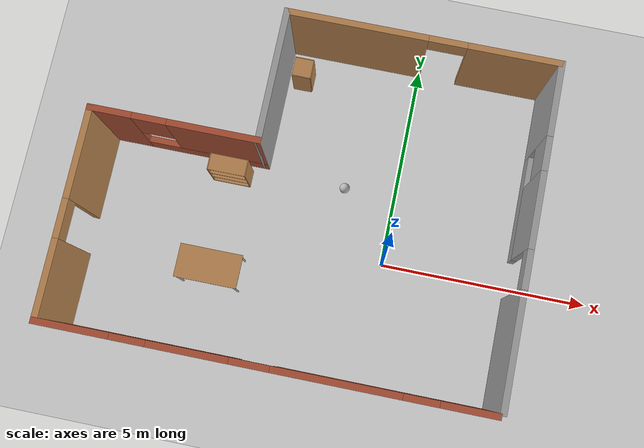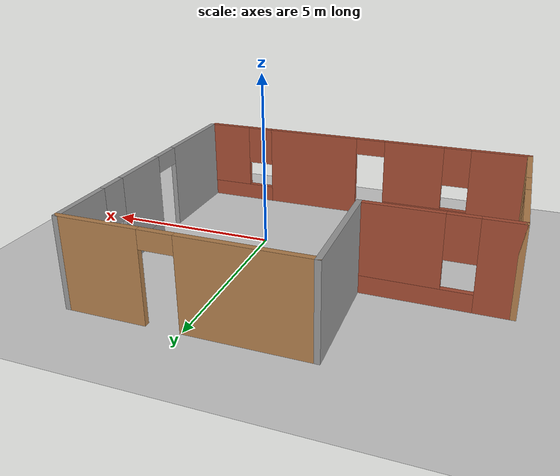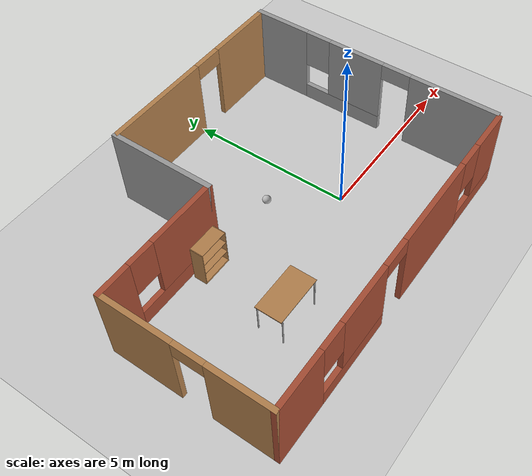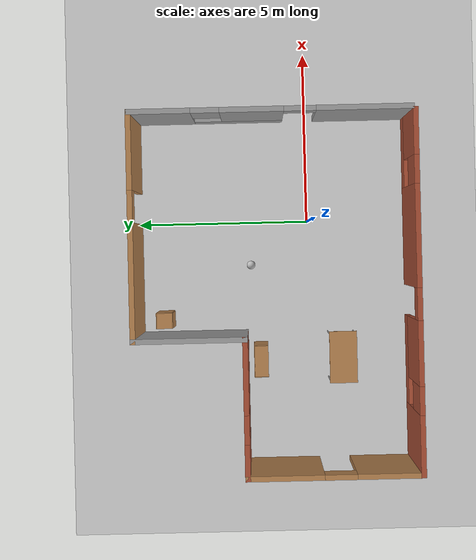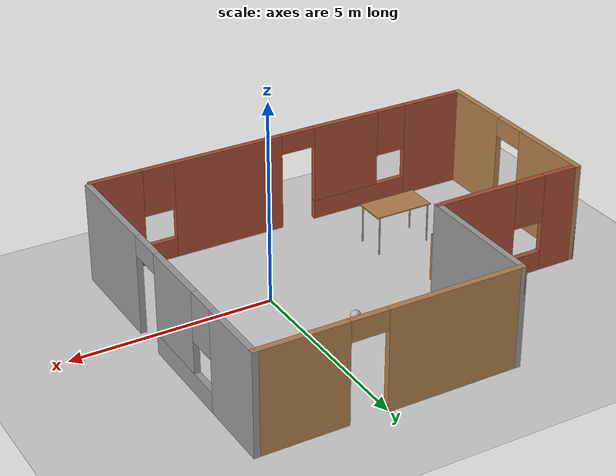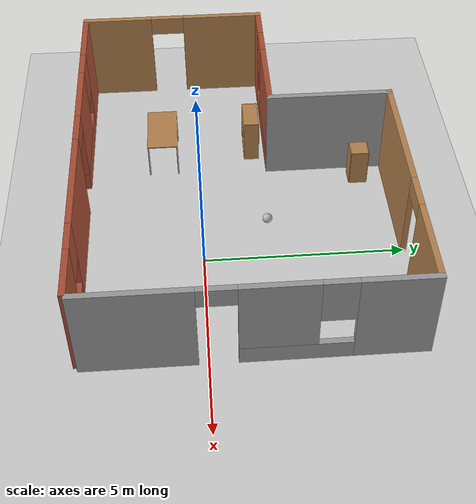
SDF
<sdf version="1.6">
 <world name="default">
  <light name="sun" type="directional">
   <pose>0 0 10 0 -0 0</pose>
   <diffuse>0.8 0.8 0.8 1</diffuse>
   <specular>0.2 0.2 0.2 1</specular>
   <attenuation>
    <range>1000</range>
    <constant>0.9</constant>
    <linear>0.01</linear>
    <quadratic>0.001</quadratic>
   </attenuation>
   <direction>-0.5 0.1 -0.9</direction>
  </light>
  <model name="ground_plane">
   <static>1</static>
   <link name="link">
    <collision name="collision">
     <geometry><plane><normal>0 0 1</normal><size>100 100</size></plane></geometry>
     <surface>
      <contact><collide_bitmask>65535</collide_bitmask></contact>
      <friction><ode><mu>100</mu><mu2>50</mu2></ode></friction>
     </surface>
    </collision>
    <visual name="visual">
     <cast_shadows>0</cast_shadows>
     <geometry><plane><normal>0 0 1</normal><size>100 100</size></plane></geometry>
     <material>
      <script><uri>file://media/materials/scripts/gazebo.material</uri><name>Gazebo/Grey</name></script>
     </material>
    </visual>
   </link>
  </model>
  <gravity>0 0 -9.8</gravity>
  <magnetic_field>6e-06 2.3e-05 -4.2e-05</magnetic_field>
  <atmosphere type="adiabatic"/>
  <physics name="default_physics" default="0" type="ode">
   <max_step_size>0.001</max_step_size>
   <real_time_factor>1</real_time_factor>
   <real_time_update_rate>1000</real_time_update_rate>
  </physics>
  <scene><ambient>0.4 0.4 0.4 1</ambient><background>0.7 0.7 0.7 1</background><shadows>1</shadows></scene>
  <spherical_coordinates>
   <surface_model>EARTH_WGS84</surface_model>
   <latitude_deg>0</latitude_deg>
   <longitude_deg>0</longitude_deg>
   <elevation>0</elevation>
   <heading_deg>0</heading_deg>
  </spherical_coordinates>
  <model name="bb">
   <pose>-2.01165 1.00358 0 0 -0 0</pose>
   <link name="Wall_1">
    <pose>-5.1 -1.55 0 0 -0 1.5708</pose>
    <visual name="Wall_1_Visual_0">
     <pose>-1.5503 0 1.25 0 -0 0</pose>
     <geometry><box><size>1.8994 0.15 2.5</size></box></geometry>
     <material>
      <script><uri>file://media/materials/scripts/gazebo.material</uri><name>Gazebo/Wood</name></script>
      <ambient>1 1 1 1</ambient>
     </material>
     <meta><layer>0</layer></meta>
    </visual>
    <collision name="Wall_1_Collision_0">
     <geometry><box><size>1.8994 0.15 2.5</size></box></geometry>
     <pose>-1.5503 0 1.25 0 -0 0</pose>
    </collision>
    <visual name="Wall_1_Visual_1">
     <pose>1.3997 0 1.25 0 -0 0</pose>
     <geometry><box><size>2.2006 0.15 2.5</size></box></geometry>
     <material>
      <script><uri>file://media/materials/scripts/gazebo.material</uri><name>Gazebo/Wood</name></script>
      <ambient>1 1 1 1</ambient>
     </material>
     <meta><layer>0</layer></meta>
    </visual>
    <collision name="Wall_1_Collision_1">
     <geometry><box><size>2.2006 0.15 2.5</size></box></geometry>
     <pose>1.3997 0 1.25 0 -0 0</pose>
    </collision>
    <visual name="Wall_1_Visual_2">
     <pose>-0.150602 0 2.25 0 -0 0</pose>
     <geometry><box><size>0.9 0.15 0.5</size></box></geometry>
     <material>
      <script><uri>file://media/materials/scripts/gazebo.material</uri><name>Gazebo/Wood</name></script>
      <ambient>1 1 1 1</ambient>
     </material>
     <meta><layer>0</layer></meta>
    </visual>
    <collision name="Wall_1_Collision_2">
     <geometry><box><size>0.9 0.15 0.5</size></box></geometry>
     <pose>-0.150602 0 2.25 0 -0 0</pose>
    </collision>
   </link>
   <link name="Wall_4">
    <pose>-3.175 0.875 0 0 -0 0</pose>
    <visual name="Wall_4_Visual_0">
     <pose>-1.48563 0 1.25 0 -0 0</pose>
     <geometry><box><size>1.02875 0.15 2.5</size></box></geometry>
     <material>
      <script><uri>file://media/materials/scripts/gazebo.material</uri><name>Gazebo/Bricks</name></script>
      <ambient>1 1 1 1</ambient>
     </material>
     <meta><layer>0</layer></meta>
    </visual>
    <collision name="Wall_4_Collision_0">
     <geometry><box><size>1.02875 0.15 2.5</size></box></geometry>
     <pose>-1.48563 0 1.25 0 -0 0</pose>
    </collision>
    <visual name="Wall_4_Visual_1">
     <pose>0.514373 0 0.25 0 -0 0</pose>
     <geometry><box><size>2.97125 0.15 0.5</size></box></geometry>
     <material>
      <script><uri>file://media/materials/scripts/gazebo.material</uri><name>Gazebo/Bricks</name></script>
      <ambient>1 1 1 1</ambient>
     </material>
     <meta><layer>0</layer></meta>
    </visual>
    <collision name="Wall_4_Collision_1">
     <geometry><box><size>2.97125 0.15 0.5</size></box></geometry>
     <pose>0.514373 0 0.25 0 -0 0</pose>
    </collision>
    <visual name="Wall_4_Visual_2">
     <pose>0.914373 0 1.5 0 -0 0</pose>
     <geometry><box><size>2.17125 0.15 2</size></box></geometry>
     <material>
      <script><uri>file://media/materials/scripts/gazebo.material</uri><name>Gazebo/Bricks</name></script>
      <ambient>1 1 1 1</ambient>
     </material>
     <meta><layer>0</layer></meta>
    </visual>
    <collision name="Wall_4_Collision_2">
     <geometry><box><size>2.17125 0.15 2</size></box></geometry>
     <pose>0.914373 0 1.5 0 -0 0</pose>
    </collision>
    <visual name="Wall_4_Visual_3">
     <pose>-0.571254 0 1.9 0 -0 0</pose>
     <geometry><box><size>0.8 0.15 1.2</size></box></geometry>
     <material>
      <script><uri>file://media/materials/scripts/gazebo.material</uri><name>Gazebo/Bricks</name></script>
      <ambient>1 1 1 1</ambient>
     </material>
     <meta><layer>0</layer></meta>
    </visual>
    <collision name="Wall_4_Collision_3">
     <geometry><box><size>0.8 0.15 1.2</size></box></geometry>
     <pose>-0.571254 0 1.9 0 -0 0</pose>
    </collision>
   </link>
   <link name="Wall_5">
    <collision name="Wall_5_Collision">
     <geometry><box><size>3.25 0.15 2.5</size></box></geometry>
     <pose>0 0 1.25 0 -0 0</pose>
    </collision>
    <visual name="Wall_5_Visual">
     <pose>0 0 1.25 0 -0 0</pose>
     <geometry><box><size>3.25 0.15 2.5</size></box></geometry>
     <material>
      <script><uri>file://media/materials/scripts/gazebo.material</uri><name>Gazebo/Grey</name></script>
      <ambient>1 1 1 1</ambient>
     </material>
     <meta><layer>0</layer></meta>
    </visual>
    <pose>-1.25 2.425 0 0 -0 1.5708</pose>
   </link>
   <link name="Wall_6">
    <pose>1.925 3.975 0 0 -0 0</pose>
    <visual name="Wall_6_Visual_0">
     <pose>-1.56486 0 1.25 0 -0 0</pose>
     <geometry><box><size>3.37028 0.15 2.5</size></box></geometry>
     <material>
      <script><uri>file://media/materials/scripts/gazebo.material</uri><name>Gazebo/Wood</name></script>
      <ambient>1 1 1 1</ambient>
     </material>
     <meta><layer>0</layer></meta>
    </visual>
    <collision name="Wall_6_Collision_0">
     <geometry><box><size>3.37028 0.15 2.5</size></box></geometry>
     <pose>-1.56486 0 1.25 0 -0 0</pose>
    </collision>
    <visual name="Wall_6_Visual_1">
     <pose>2.13514 0 1.25 0 -0 0</pose>
     <geometry><box><size>2.22972 0.15 2.5</size></box></geometry>
     <material>
      <script><uri>file://media/materials/scripts/gazebo.material</uri><name>Gazebo/Wood</name></script>
      <ambient>1 1 1 1</ambient>
     </material>
     <meta><layer>0</layer></meta>
    </visual>
    <collision name="Wall_6_Collision_1">
     <geometry><box><size>2.22972 0.15 2.5</size></box></geometry>
     <pose>2.13514 0 1.25 0 -0 0</pose>
    </collision>
    <visual name="Wall_6_Visual_2">
     <pose>0.570279 0 2.25 0 -0 0</pose>
     <geometry><box><size>0.9 0.15 0.5</size></box></geometry>
     <material>
      <script><uri>file://media/materials/scripts/gazebo.material</uri><name>Gazebo/Wood</name></script>
      <ambient>1 1 1 1</ambient>
     </material>
     <meta><layer>0</layer></meta>
    </visual>
    <collision name="Wall_6_Collision_2">
     <geometry><box><size>0.9 0.15 0.5</size></box></geometry>
     <pose>0.570279 0 2.25 0 -0 0</pose>
    </collision>
   </link>
   <link name="Wall_7">
    <pose>5.1 0.05 0 0 0 -1.5708</pose>
    <visual name="Wall_7_Visual_0">
     <pose>-3.10031 0 1.25 0 -0 0</pose>
     <geometry><box><size>1.79939 0.15 2.5</size></box></geometry>
     <material>
      <script><uri>file://media/materials/scripts/gazebo.material</uri><name>Gazebo/Grey</name></script>
      <ambient>1 1 1 1</ambient>
     </material>
     <meta><layer>0</layer></meta>
    </visual>
    <collision name="Wall_7_Collision_0">
     <geometry><box><size>1.79939 0.15 2.5</size></box></geometry>
     <pose>-3.10031 0 1.25 0 -0 0</pose>
    </collision>
    <visual name="Wall_7_Visual_1">
     <pose>2.64295 0 1.25 0 -0 0</pose>
     <geometry><box><size>2.7141 0.15 2.5</size></box></geometry>
     <material>
      <script><uri>file://media/materials/scripts/gazebo.material</uri><name>Gazebo/Grey</name></script>
      <ambient>1 1 1 1</ambient>
     </material>
     <meta><layer>0</layer></meta>
    </visual>
    <collision name="Wall_7_Collision_1">
     <geometry><box><size>2.7141 0.15 2.5</size></box></geometry>
     <pose>2.64295 0 1.25 0 -0 0</pose>
    </collision>
    <visual name="Wall_7_Visual_2">
     <pose>-0.90736 0 0.25 0 -0 0</pose>
     <geometry><box><size>2.58651 0.15 0.5</size></box></geometry>
     <material>
      <script><uri>file://media/materials/scripts/gazebo.material</uri><name>Gazebo/Grey</name></script>
      <ambient>1 1 1 1</ambient>
     </material>
     <meta><layer>0</layer></meta>
    </visual>
    <collision name="Wall_7_Collision_2">
     <geometry><box><size>2.58651 0.15 0.5</size></box></geometry>
     <pose>-0.90736 0 0.25 0 -0 0</pose>
    </collision>
    <visual name="Wall_7_Visual_3">
     <pose>-0.50736 0 1.5 0 -0 0</pose>
     <geometry><box><size>1.78651 0.15 2</size></box></geometry>
     <material>
      <script><uri>file://media/materials/scripts/gazebo.material</uri><name>Gazebo/Grey</name></script>
      <ambient>1 1 1 1</ambient>
     </material>
     <meta><layer>0</layer></meta>
    </visual>
    <collision name="Wall_7_Collision_3">
     <geometry><box><size>1.78651 0.15 2</size></box></geometry>
     <pose>-0.50736 0 1.5 0 -0 0</pose>
    </collision>
    <visual name="Wall_7_Visual_4">
     <pose>-1.80062 0 1.9 0 -0 0</pose>
     <geometry><box><size>0.8 0.15 1.2</size></box></geometry>
     <material>
      <script><uri>file://media/materials/scripts/gazebo.material</uri><name>Gazebo/Grey</name></script>
      <ambient>1 1 1 1</ambient>
     </material>
     <meta><layer>0</layer></meta>
    </visual>
    <collision name="Wall_7_Collision_4">
     <geometry><box><size>0.8 0.15 1.2</size></box></geometry>
     <pose>-1.80062 0 1.9 0 -0 0</pose>
    </collision>
    <visual name="Wall_7_Visual_5">
     <pose>0.835895 0 2.25 0 -0 0</pose>
     <geometry><box><size>0.9 0.15 0.5</size></box></geometry>
     <material>
      <script><uri>file://media/materials/scripts/gazebo.material</uri><name>Gazebo/Grey</name></script>
      <ambient>1 1 1 1</ambient>
     </material>
     <meta><layer>0</layer></meta>
    </visual>
    <collision name="Wall_7_Collision_5">
     <geometry><box><size>0.9 0.15 0.5</size></box></geometry>
     <pose>0.835895 0 2.25 0 -0 0</pose>
    </collision>
   </link>
   <link name="Wall_9">
    <pose>-0.05 -3.975 0 0 -0 0</pose>
    <visual name="Wall_9_Visual_0">
     <pose>-4.26089 0 1.25 0 -0 0</pose>
     <geometry><box><size>1.72823 0.15 2.5</size></box></geometry>
     <material>
      <script><uri>file://media/materials/scripts/gazebo.material</uri><name>Gazebo/Bricks</name></script>
      <ambient>1 1 1 1</ambient>
     </material>
     <meta><layer>0</layer></meta>
    </visual>
    <collision name="Wall_9_Collision_0">
     <geometry><box><size>1.72823 0.15 2.5</size></box></geometry>
     <pose>-4.26089 0 1.25 0 -0 0</pose>
    </collision>
    <visual name="Wall_9_Visual_1">
     <pose>1.56314 0 1.25 0 -0 0</pose>
     <geometry><box><size>2.88608 0.15 2.5</size></box></geometry>
     <material>
      <script><uri>file://media/materials/scripts/gazebo.material</uri><name>Gazebo/Bricks</name></script>
      <ambient>1 1 1 1</ambient>
     </material>
     <meta><layer>0</layer></meta>
    </visual>
    <collision name="Wall_9_Collision_1">
     <geometry><box><size>2.88608 0.15 2.5</size></box></geometry>
     <pose>1.56314 0 1.25 0 -0 0</pose>
    </collision>
    <visual name="Wall_9_Visual_2">
     <pose>-2.08833 0 0.25 0 -0 0</pose>
     <geometry><box><size>2.61687 0.15 0.5</size></box></geometry>
     <material>
      <script><uri>file://media/materials/scripts/gazebo.material</uri><name>Gazebo/Bricks</name></script>
      <ambient>1 1 1 1</ambient>
     </material>
     <meta><layer>0</layer></meta>
    </visual>
    <collision name="Wall_9_Collision_2">
     <geometry><box><size>2.61687 0.15 0.5</size></box></geometry>
     <pose>-2.08833 0 0.25 0 -0 0</pose>
    </collision>
    <visual name="Wall_9_Visual_3">
     <pose>4.06559 0 0.25 0 -0 0</pose>
     <geometry><box><size>2.11882 0.15 0.5</size></box></geometry>
     <material>
      <script><uri>file://media/materials/scripts/gazebo.material</uri><name>Gazebo/Bricks</name></script>
      <ambient>1 1 1 1</ambient>
     </material>
     <meta><layer>0</layer></meta>
    </visual>
    <collision name="Wall_9_Collision_3">
     <geometry><box><size>2.11882 0.15 0.5</size></box></geometry>
     <pose>4.06559 0 0.25 0 -0 0</pose>
    </collision>
    <visual name="Wall_9_Visual_4">
     <pose>-1.68833 0 1.5 0 -0 0</pose>
     <geometry><box><size>1.81687 0.15 2</size></box></geometry>
     <material>
      <script><uri>file://media/materials/scripts/gazebo.material</uri><name>Gazebo/Bricks</name></script>
      <ambient>1 1 1 1</ambient>
     </material>
     <meta><layer>0</layer></meta>
    </visual>
    <collision name="Wall_9_Collision_4">
     <geometry><box><size>1.81687 0.15 2</size></box></geometry>
     <pose>-1.68833 0 1.5 0 -0 0</pose>
    </collision>
    <visual name="Wall_9_Visual_5">
     <pose>-1.68833 0 1.5 0 -0 0</pose>
     <geometry><box><size>1.81687 0.15 2</size></box></geometry>
     <material>
      <script><uri>file://media/materials/scripts/gazebo.material</uri><name>Gazebo/Bricks</name></script>
      <ambient>1 1 1 1</ambient>
     </material>
     <meta><layer>0</layer></meta>
    </visual>
    <collision name="Wall_9_Collision_5">
     <geometry><box><size>1.81687 0.15 2</size></box></geometry>
     <pose>-1.68833 0 1.5 0 -0 0</pose>
    </collision>
    <visual name="Wall_9_Visual_6">
     <pose>4.46559 0 1.5 0 -0 0</pose>
     <geometry><box><size>1.31882 0.15 2</size></box></geometry>
     <material>
      <script><uri>file://media/materials/scripts/gazebo.material</uri><name>Gazebo/Bricks</name></script>
      <ambient>1 1 1 1</ambient>
     </material>
     <meta><layer>0</layer></meta>
    </visual>
    <collision name="Wall_9_Collision_6">
     <geometry><box><size>1.31882 0.15 2</size></box></geometry>
     <pose>4.46559 0 1.5 0 -0 0</pose>
    </collision>
    <visual name="Wall_9_Visual_7">
     <pose>-2.99677 0 1.9 0 -0 0</pose>
     <geometry><box><size>0.8 0.15 1.2</size></box></geometry>
     <material>
      <script><uri>file://media/materials/scripts/gazebo.material</uri><name>Gazebo/Bricks</name></script>
      <ambient>1 1 1 1</ambient>
     </material>
     <meta><layer>0</layer></meta>
    </visual>
    <collision name="Wall_9_Collision_7">
     <geometry><box><size>0.8 0.15 1.2</size></box></geometry>
     <pose>-2.99677 0 1.9 0 -0 0</pose>
    </collision>
    <visual name="Wall_9_Visual_8">
     <pose>3.40618 0 1.9 0 -0 0</pose>
     <geometry><box><size>0.8 0.15 1.2</size></box></geometry>
     <material>
      <script><uri>file://media/materials/scripts/gazebo.material</uri><name>Gazebo/Bricks</name></script>
      <ambient>1 1 1 1</ambient>
     </material>
     <meta><layer>0</layer></meta>
    </visual>
    <collision name="Wall_9_Collision_8">
     <geometry><box><size>0.8 0.15 1.2</size></box></geometry>
     <pose>3.40618 0 1.9 0 -0 0</pose>
    </collision>
    <visual name="Wall_9_Visual_9">
     <pose>-0.329899 0 2.25 0 -0 0</pose>
     <geometry><box><size>0.9 0.15 0.5</size></box></geometry>
     <material>
      <script><uri>file://media/materials/scripts/gazebo.material</uri><name>Gazebo/Bricks</name></script>
      <ambient>1 1 1 1</ambient>
     </material>
     <meta><layer>0</layer></meta>
    </visual>
    <collision name="Wall_9_Collision_9">
     <geometry><box><size>0.9 0.15 0.5</size></box></geometry>
     <pose>-0.329899 0 2.25 0 -0 0</pose>
    </collision>
    <visual name="Wall_9_Visual_10">
     <pose>-0.329899 0 2.25 0 -0 0</pose>
     <geometry><box><size>0.9 0.15 0.5</size></box></geometry>
     <material>
      <script><uri>file://media/materials/scripts/gazebo.material</uri><name>Gazebo/Bricks</name></script>
      <ambient>1 1 1 1</ambient>
     </material>
     <meta><layer>0</layer></meta>
    </visual>
    <collision name="Wall_9_Collision_10">
     <geometry><box><size>0.9 0.15 0.5</size></box></geometry>
     <pose>-0.329899 0 2.25 0 -0 0</pose>
    </collision>
   </link>
   <static>1</static>
  </model>
  <model name="bookshelf">
   <static>1</static>
   <link name="link">
    <inertial><mass>1</mass></inertial>
    <collision name="back">
     <pose>0 0.005 0.6 0 -0 0</pose>
     <geometry><box><size>0.9 0.01 1.2</size></box></geometry>
    </collision>
    <visual name="visual1">
     <pose>0 0.005 0.6 0 -0 0</pose>
     <geometry><box><size>0.9 0.01 1.2</size></box></geometry>
     <material>
      <script><uri>file://media/materials/scripts/gazebo.material</uri><name>Gazebo/Wood</name></script>
     </material>
    </visual>
    <collision name="left_side">
     <pose>0.45 -0.195 0.6 0 -0 0</pose>
     <geometry><box><size>0.02 0.4 1.2</size></box></geometry>
    </collision>
    <visual name="visual2">
     <pose>0.45 -0.195 0.6 0 -0 0</pose>
     <geometry><box><size>0.02 0.4 1.2</size></box></geometry>
     <material>
      <script><uri>file://media/materials/scripts/gazebo.material</uri><name>Gazebo/Wood</name></script>
     </material>
    </visual>
    <collision name="right_side">
     <pose>-0.45 -0.195 0.6 0 -0 0</pose>
     <geometry><box><size>0.02 0.4 1.2</size></box></geometry>
    </collision>
    <visual name="visual3">
     <pose>-0.45 -0.195 0.6 0 -0 0</pose>
     <geometry><box><size>0.02 0.4 1.2</size></box></geometry>
     <material>
      <script><uri>file://media/materials/scripts/gazebo.material</uri><name>Gazebo/Wood</name></script>
     </material>
    </visual>
    <collision name="bottom">
     <pose>0 -0.195 0.03 0 -0 0</pose>
     <geometry><box><size>0.88 0.4 0.06</size></box></geometry>
    </collision>
    <visual name="visual4">
     <pose>0 -0.195 0.03 0 -0 0</pose>
     <geometry><box><size>0.88 0.4 0.06</size></box></geometry>
     <material>
      <script><uri>file://media/materials/scripts/gazebo.material</uri><name>Gazebo/Wood</name></script>
     </material>
    </visual>
    <collision name="top">
     <pose>0 -0.195 1.19 0 -0 0</pose>
     <geometry><box><size>0.88 0.4 0.02</size></box></geometry>
    </collision>
    <visual name="visual5">
     <pose>0 -0.195 1.19 0 -0 0</pose>
     <geometry><box><size>0.88 0.4 0.02</size></box></geometry>
     <material>
      <script><uri>file://media/materials/scripts/gazebo.material</uri><name>Gazebo/Wood</name></script>
     </material>
    </visual>
    <collision name="low_shelf">
     <pose>0 -0.195 0.43 0 -0 0</pose>
     <geometry><box><size>0.88 0.4 0.02</size></box></geometry>
    </collision>
    <visual name="visual6">
     <pose>0 -0.195 0.43 0 -0 0</pose>
     <geometry><box><size>0.88 0.4 0.02</size></box></geometry>
     <material>
      <script><uri>file://media/materials/scripts/gazebo.material</uri><name>Gazebo/Wood</name></script>
     </material>
    </visual>
    <collision name="high_shelf">
     <pose>0 -0.195 0.8 0 -0 0</pose>
     <geometry><box><size>0.88 0.4 0.02</size></box></geometry>
    </collision>
    <visual name="visual7">
     <pose>0 -0.195 0.8 0 -0 0</pose>
     <geometry><box><size>0.88 0.4 0.02</size></box></geometry>
     <material>
      <script><uri>file://media/materials/scripts/gazebo.material</uri><name>Gazebo/Wood</name></script>
     </material>
    </visual>
   </link>
   <pose>-3.99796 1.62957 0.166794 0 -0 0</pose>
  </model>
  <model name="cabinet">
   <static>1</static>
   <link name="cabinet_bottom_plate">
    <inertial>
     <pose>0 0 -1 0 -0 0</pose>
     <inertia><ixx>2.05</ixx><ixy>0</ixy><ixz>0</ixz><iyy>2.05</iyy><iyz>0</iyz><izz>2.05</izz></inertia>
     <mass>25</mass>
    </inertial>
    <collision name="cabinet_bottom_plate_geom">
     <pose>0 0 0.01 0 -0 0</pose>
     <geometry><box><size>0.45 0.45 0.02</size></box></geometry>
    </collision>
    <visual name="cabinet_bottom_plate_geom_visual">
     <pose>0 0 0.01 0 -0 0</pose>
     <geometry><box><size>0.45 0.45 0.02</size></box></geometry>
     <material>
      <script><uri>file://media/materials/scripts/gazebo.material</uri><name>Gazebo/Wood</name></script>
     </material>
    </visual>
    <collision name="cabinet_bottom_plate_geom_cabinet_back_plate">
     <pose>0.235 0 0.51 0 -0 0</pose>
     <geometry><box><size>0.02 0.45 1.02</size></box></geometry>
    </collision>
    <visual name="cabinet_bottom_plate_geom_cabinet_back_plate_visual">
     <pose>0.235 0 0.51 0 -0 0</pose>
     <geometry><box><size>0.02 0.45 1.02</size></box></geometry>
     <material>
      <script><uri>file://media/materials/scripts/gazebo.material</uri><name>Gazebo/Wood</name></script>
     </material>
    </visual>
    <collision name="cabinet_bottom_plate_geom_cabinet_left_plate">
     <pose>0 0.235 0.51 0 -0 0</pose>
     <geometry><box><size>0.45 0.02 1.02</size></box></geometry>
    </collision>
    <visual name="cabinet_bottom_plate_geom_cabinet_left_plate_visual">
     <pose>0 0.235 0.51 0 -0 0</pose>
     <geometry><box><size>0.45 0.02 1.02</size></box></geometry>
     <material>
      <script><uri>file://media/materials/scripts/gazebo.material</uri><name>Gazebo/Wood</name></script>
     </material>
    </visual>
    <collision name="cabinet_bottom_plate_geom_cabinet_middle_plate">
     <pose>0 0 0.51 0 -0 0</pose>
     <geometry><box><size>0.45 0.45 0.02</size></box></geometry>
    </collision>
    <visual name="cabinet_bottom_plate_geom_cabinet_middle_plate_visual">
     <pose>0 0 0.51 0 -0 0</pose>
     <geometry><box><size>0.45 0.45 0.02</size></box></geometry>
     <material>
      <script><uri>file://media/materials/scripts/gazebo.material</uri><name>Gazebo/Wood</name></script>
     </material>
    </visual>
    <collision name="cabinet_bottom_plate_geom_cabinet_right_plate">
     <pose>0 -0.235 0.51 0 -0 0</pose>
     <geometry><box><size>0.45 0.02 1.02</size></box></geometry>
    </collision>
    <visual name="cabinet_bottom_plate_geom_cabinet_right_plate_visual">
     <pose>0 -0.235 0.51 0 -0 0</pose>
     <geometry><box><size>0.45 0.02 1.02</size></box></geometry>
     <material>
      <script><uri>file://media/materials/scripts/gazebo.material</uri><name>Gazebo/Wood</name></script>
     </material>
    </visual>
    <collision name="cabinet_bottom_plate_geom_cabinet_top_plate">
     <pose>0 0 1.01 0 -0 0</pose>
     <geometry><box><size>0.45 0.45 0.02</size></box></geometry>
    </collision>
    <visual name="cabinet_bottom_plate_geom_cabinet_top_plate_visual">
     <pose>0 0 1.01 0 -0 0</pose>
     <geometry><box><size>0.45 0.45 0.02</size></box></geometry>
     <material>
      <script><uri>file://media/materials/scripts/gazebo.material</uri><name>Gazebo/Wood</name></script>
     </material>
    </visual>
   </link>
   <pose>-2.80753 4.22941 0 0 -0 0</pose>
  </model>
  <model name="frc2016_ball">
   <pose>-1.25333 1.68366 0.127 0 -0 0</pose>
   <link name="link">
    <inertial>
     <mass>0.213</mass>
     <inertia>
      <ixx>0.00322667</ixx>
      <ixy>0</ixy>
      <ixz>0</ixz>
      <iyy>0.00322667</iyy>
      <iyz>0</iyz>
      <izz>0.00322667</izz>
     </inertia>
    </inertial>
    <visual name="visual"><geometry><sphere><radius>0.127</radius></sphere></geometry></visual>
    <collision name="collision">
     <geometry><sphere><radius>0.127</radius></sphere></geometry>
     <surface>
      <bounce><restitution_coefficient>0.15937</restitution_coefficient><threshold>0</threshold></bounce>
      <contact><ode><max_vel>100</max_vel><min_depth>0.001</min_depth></ode></contact>
     </surface>
    </collision>
   </link>
  </model>
  <model name="table">
   <static>1</static>
   <link name="link">
    <collision name="surface">
     <pose>0 0 1 0 -0 0</pose>
     <geometry><box><size>1.5 0.8 0.03</size></box></geometry>
     <surface><friction><ode><mu>0.6</mu><mu2>0.6</mu2></ode></friction></surface>
    </collision>
    <visual name="visual1">
     <pose>0 0 1 0 -0 0</pose>
     <geometry><box><size>1.5 0.8 0.03</size></box></geometry>
     <material>
      <script><uri>file://media/materials/scripts/gazebo.material</uri><name>Gazebo/Wood</name></script>
     </material>
    </visual>
    <collision name="front_left_leg">
     <pose>0.68 0.38 0.5 0 -0 0</pose>
     <geometry><cylinder><radius>0.02</radius><length>1</length></cylinder></geometry>
    </collision>
    <visual name="front_left_leg">
     <pose>0.68 0.38 0.5 0 -0 0</pose>
     <geometry><cylinder><radius>0.02</radius><length>1</length></cylinder></geometry>
     <material>
      <script><uri>file://media/materials/scripts/gazebo.material</uri><name>Gazebo/Grey</name></script>
     </material>
    </visual>
    <collision name="front_right_leg">
     <pose>0.68 -0.38 0.5 0 -0 0</pose>
     <geometry><cylinder><radius>0.02</radius><length>1</length></cylinder></geometry>
    </collision>
    <visual name="front_right_leg">
     <pose>0.68 -0.38 0.5 0 -0 0</pose>
     <geometry><cylinder><radius>0.02</radius><length>1</length></cylinder></geometry>
     <material>
      <script><uri>file://media/materials/scripts/gazebo.material</uri><name>Gazebo/Grey</name></script>
     </material>
    </visual>
    <collision name="back_right_leg">
     <pose>-0.68 -0.38 0.5 0 -0 0</pose>
     <geometry><cylinder><radius>0.02</radius><length>1</length></cylinder></geometry>
    </collision>
    <visual name="back_right_leg">
     <pose>-0.68 -0.38 0.5 0 -0 0</pose>
     <geometry><cylinder><radius>0.02</radius><length>1</length></cylinder></geometry>
     <material>
      <script><uri>file://media/materials/scripts/gazebo.material</uri><name>Gazebo/Grey</name></script>
     </material>
    </visual>
    <collision name="back_left_leg">
     <pose>-0.68 0.38 0.5 0 -0 0</pose>
     <geometry><cylinder><radius>0.02</radius><length>1</length></cylinder></geometry>
    </collision>
    <visual name="back_left_leg">
     <pose>-0.68 0.38 0.5 0 -0 0</pose>
     <geometry><cylinder><radius>0.02</radius><length>1</length></cylinder></geometry>
     <material>
      <script><uri>file://media/materials/scripts/gazebo.material</uri><name>Gazebo/Grey</name></script>
     </material>
    </visual>
   </link>
   <pose>-3.97023 -0.946582 0 0 -0 0</pose>
  </model>
 </world>
</sdf>
